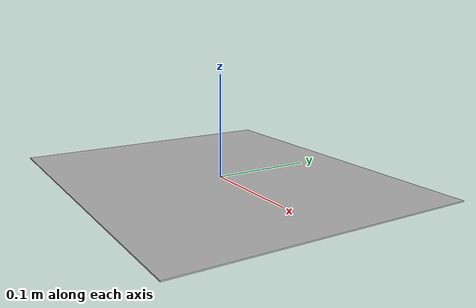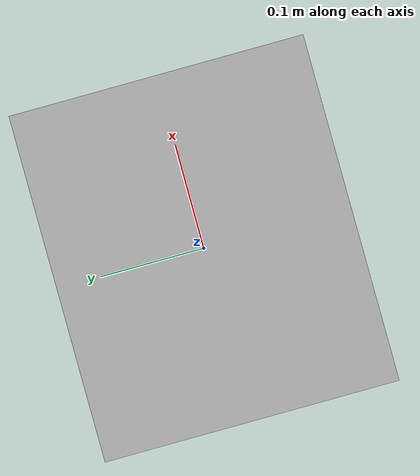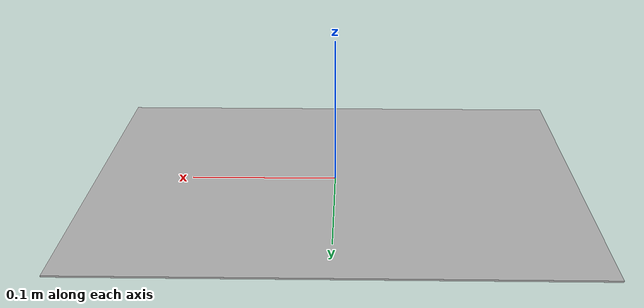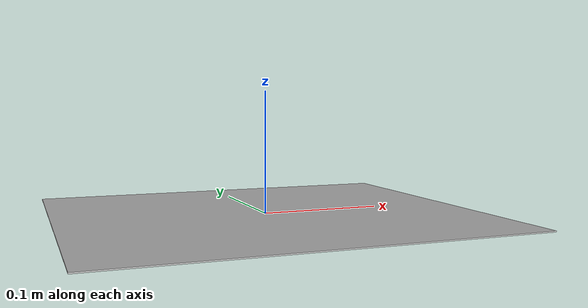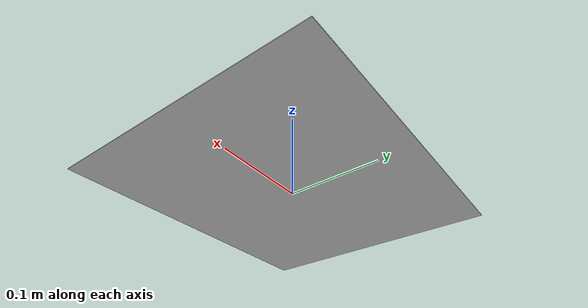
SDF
<?xml version='1.0'?>
 	<sdf version='1.6'>
 	<model name='stag-7001'>
 		<link name='link'>
 			<kinematic>0</kinematic>
 			<visual name='visual'>
 				<geometry>
 					<box>
 						<size>0.335 0.285 0.001</size>
 					</box>
 				</geometry>
 				<material>
 					<script>
 						<uri>model://BIDIR-stag-7001/material/scripts</uri>
 						<uri>model://BIDIR-stag-7001/material/texture</uri>
 						<name>stag-7001/Diffuse</name>
 					</script>
 				</material>
 				<transparency>0</transparency>
 			</visual>
 			<collision name='collision'>
 				<geometry>
 					<box>
 					<size>0 0 0</size>
 					</box>
 				</geometry>
 		</collision>
 	</link>
 	<static>1</static>
 	<allow_auto_disable>1</allow_auto_disable>
 	</model>
 </sdf>
